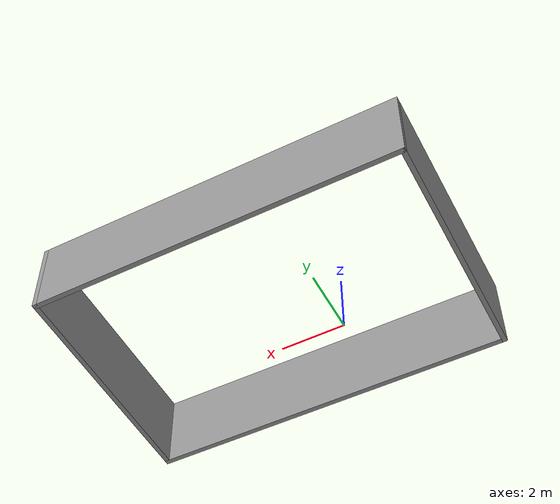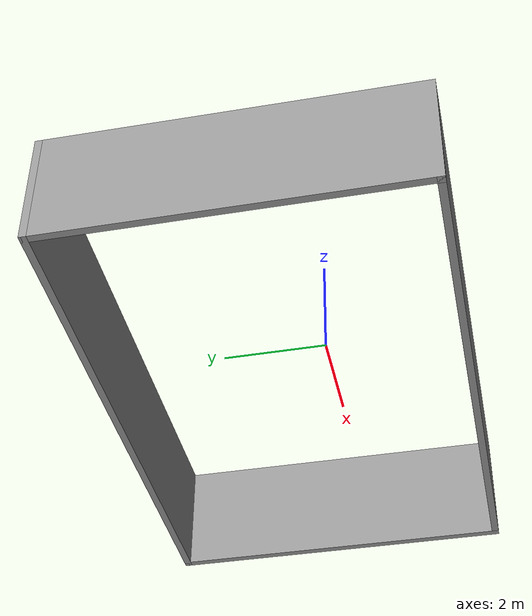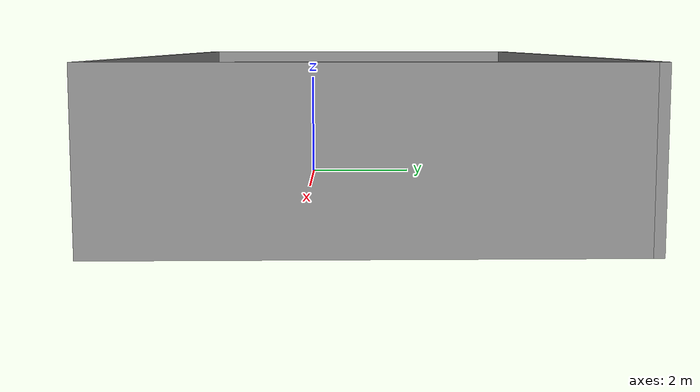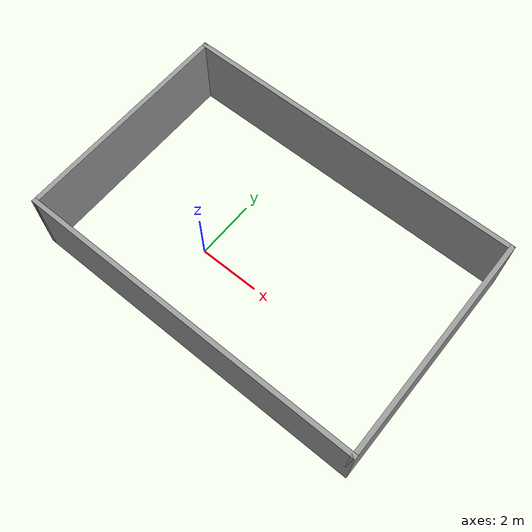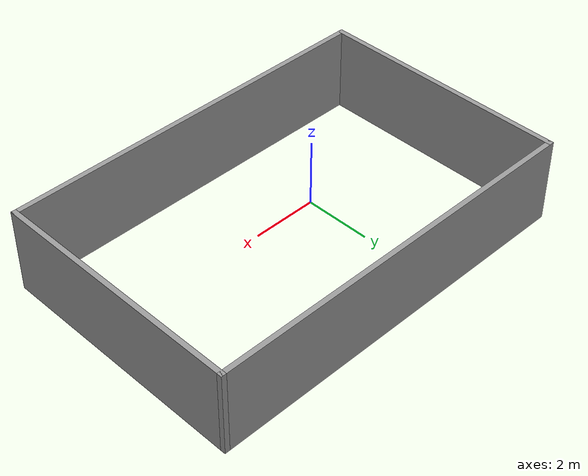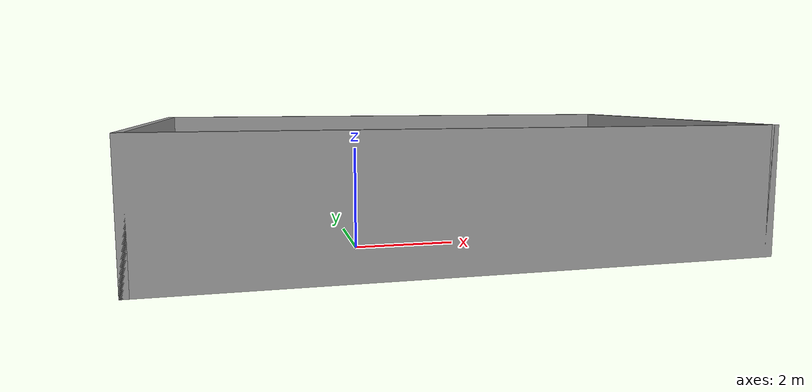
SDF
<?xml version='1.0'?>
<sdf version='1.7'>
  <model name='world_second'>
    <pose>1.78466 1.02185 0 0 -0 0</pose>
    <link name='Wall_1'>
      <collision name='Wall_1_Collision'>
        <geometry>
          <box>
            <size>11.5 0.15 2.5</size>
          </box>
        </geometry>
        <pose>0 0 1.25 0 -0 0</pose>
      </collision>
      <visual name='Wall_1_Visual'>
        <pose>0 0 1.25 0 -0 0</pose>
        <geometry>
          <box>
            <size>11.5 0.15 2.5</size>
          </box>
        </geometry>
        <material>
          <script>
            <uri>file://media/materials/scripts/gazebo.material</uri>
            <name>Gazebo/Grey</name>
          </script>
          <ambient>1 1 1 1</ambient>
        </material>
        <meta>
          <layer>0</layer>
        </meta>
      </visual>
      <pose>0 -3.675 0 0 -0 0</pose>
    </link>
    <link name='Wall_5'>
      <collision name='Wall_5_Collision'>
        <geometry>
          <box>
            <size>7.5 0.15 2.5</size>
          </box>
        </geometry>
        <pose>0 0 1.25 0 -0 0</pose>
      </collision>
      <visual name='Wall_5_Visual'>
        <pose>0 0 1.25 0 -0 0</pose>
        <geometry>
          <box>
            <size>7.5 0.15 2.5</size>
          </box>
        </geometry>
        <material>
          <script>
            <uri>file://media/materials/scripts/gazebo.material</uri>
            <name>Gazebo/Grey</name>
          </script>
          <ambient>1 1 1 1</ambient>
        </material>
        <meta>
          <layer>0</layer>
        </meta>
      </visual>
      <pose>5.675 -0 0 0 -0 1.5708</pose>
    </link>
    <link name='Wall_6'>
      <collision name='Wall_6_Collision'>
        <geometry>
          <box>
            <size>11.5 0.15 2.5</size>
          </box>
        </geometry>
        <pose>0 0 1.25 0 -0 0</pose>
      </collision>
      <visual name='Wall_6_Visual'>
        <pose>0 0 1.25 0 -0 0</pose>
        <geometry>
          <box>
            <size>11.5 0.15 2.5</size>
          </box>
        </geometry>
        <material>
          <script>
            <uri>file://media/materials/scripts/gazebo.material</uri>
            <name>Gazebo/Grey</name>
          </script>
          <ambient>1 1 1 1</ambient>
        </material>
        <meta>
          <layer>0</layer>
        </meta>
      </visual>
      <pose>0 3.675 0 0 -0 3.14159</pose>
    </link>
    <link name='Wall_7'>
      <collision name='Wall_7_Collision'>
        <geometry>
          <box>
            <size>7.5 0.15 2.5</size>
          </box>
        </geometry>
        <pose>0 0 1.25 0 -0 0</pose>
      </collision>
      <visual name='Wall_7_Visual'>
        <pose>0 0 1.25 0 -0 0</pose>
        <geometry>
          <box>
            <size>7.5 0.15 2.5</size>
          </box>
        </geometry>
        <material>
          <script>
            <uri>file://media/materials/scripts/gazebo.material</uri>
            <name>Gazebo/Grey</name>
          </script>
          <ambient>1 1 1 1</ambient>
        </material>
        <meta>
          <layer>0</layer>
        </meta>
      </visual>
      <pose>-5.675 -0 0 0 -0 -1.5708</pose>
    </link>
    <static>1</static>
  </model>
</sdf>
